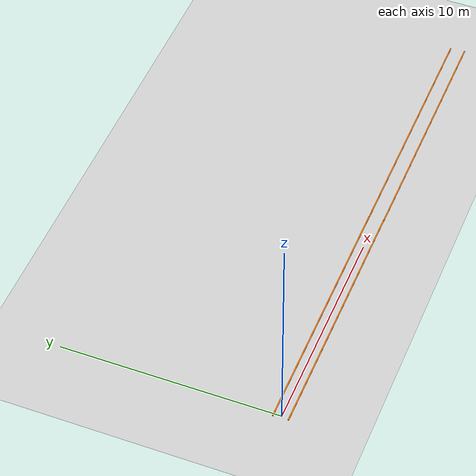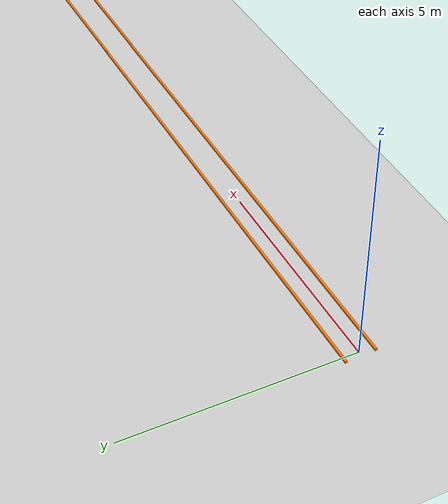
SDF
<sdf version="1.6">
 <world name="default">
  <model name="ground_plane">
   <static>1</static>
   <link name="link">
    <collision name="collision">
     <geometry><plane><normal>0 0 1</normal><size>100 100</size></plane></geometry>
     <surface><friction><ode><mu>100</mu><mu2>50</mu2></ode></friction></surface>
    </collision>
    <visual name="visual">
     <cast_shadows>0</cast_shadows>
     <geometry><plane><normal>0 0 1</normal><size>100 100</size></plane></geometry>
     <material>
      <script><uri>file://media/materials/scripts/gazebo.material</uri><name>Gazebo/Grey</name></script>
     </material>
    </visual>
   </link>
  </model>
  <light name="sun" type="directional">
   <pose>0 0 10 0 -0 0</pose>
   <diffuse>0.8 0.8 0.8 1</diffuse>
   <specular>0.2 0.2 0.2 1</specular>
   <attenuation>
    <range>1000</range>
    <constant>0.9</constant>
    <linear>0.01</linear>
    <quadratic>0.001</quadratic>
   </attenuation>
   <direction>-0.5 0.1 -0.9</direction>
  </light>
  <gravity>0 0 -9.8</gravity>
  <magnetic_field>6e-06 2.3e-05 -4.2e-05</magnetic_field>
  <atmosphere type="adiabatic"/>
  <physics name="default_physics" default="0" type="ode">
   <max_step_size>0.001</max_step_size>
   <real_time_factor>1</real_time_factor>
   <real_time_update_rate>1000</real_time_update_rate>
  </physics>
  <scene><ambient>0.4 0.4 0.4 1</ambient><background>0.7 0.7 0.7 1</background><shadows>1</shadows></scene>
  <spherical_coordinates>
   <surface_model>EARTH_WGS84</surface_model>
   <latitude_deg>0</latitude_deg>
   <longitude_deg>0</longitude_deg>
   <elevation>0</elevation>
   <heading_deg>0</heading_deg>
  </spherical_coordinates>
  <model name="lane">
   <pose>5.84643 -0.318739 0 0 -0 0</pose>
   <link name="Wall_0">
    <collision name="Wall_0_Collision">
     <geometry><box><size>11.9 0.05 0.05</size></box></geometry>
     <pose>0 0 0.025 0 -0 0</pose>
    </collision>
    <visual name="Wall_0_Visual">
     <pose>0 0 0.025 0 -0 0</pose>
     <geometry><box><size>11.9 0.05 0.05</size></box></geometry>
     <material>
      <script><uri>file://media/materials/scripts/gazebo.material</uri><name>Gazebo/Grey</name></script>
      <ambient>0.996078 0.47451 0.0196078 1</ambient>
     </material>
     <meta><layer>0</layer></meta>
    </visual>
   </link>
   <static>1</static>
  </model>
  <model name="lane_0">
   <pose>5.81441 0.356042 0 0 -0 0</pose>
   <link name="Wall_0">
    <collision name="Wall_0_Collision">
     <geometry><box><size>11.9 0.05 0.05</size></box></geometry>
     <pose>0 0 0.025 0 -0 0</pose>
    </collision>
    <visual name="Wall_0_Visual">
     <pose>0 0 0.025 0 -0 0</pose>
     <geometry><box><size>11.9 0.05 0.05</size></box></geometry>
     <material>
      <script><uri>file://media/materials/scripts/gazebo.material</uri><name>Gazebo/Grey</name></script>
      <ambient>0.996078 0.47451 0.0196078 1</ambient>
     </material>
     <meta><layer>0</layer></meta>
    </visual>
   </link>
   <static>1</static>
  </model>
  <model name="lane_1">
   <pose>17.7357 0.350281 0 0 -0 0</pose>
   <link name="Wall_0">
    <collision name="Wall_0_Collision">
     <geometry><box><size>11.9 0.05 0.05</size></box></geometry>
     <pose>0 0 0.025 0 -0 0</pose>
    </collision>
    <visual name="Wall_0_Visual">
     <pose>0 0 0.025 0 -0 0</pose>
     <geometry><box><size>11.9 0.05 0.05</size></box></geometry>
     <material>
      <script><uri>file://media/materials/scripts/gazebo.material</uri><name>Gazebo/Grey</name></script>
      <ambient>0.996078 0.47451 0.0196078 1</ambient>
     </material>
     <meta><layer>0</layer></meta>
    </visual>
   </link>
   <static>1</static>
  </model>
  <model name="lane_2">
   <pose>17.7713 -0.327684 0 0 -0 0</pose>
   <link name="Wall_0">
    <collision name="Wall_0_Collision">
     <geometry><box><size>11.9 0.05 0.05</size></box></geometry>
     <pose>0 0 0.025 0 -0 0</pose>
    </collision>
    <visual name="Wall_0_Visual">
     <pose>0 0 0.025 0 -0 0</pose>
     <geometry><box><size>11.9 0.05 0.05</size></box></geometry>
     <material>
      <script><uri>file://media/materials/scripts/gazebo.material</uri><name>Gazebo/Grey</name></script>
      <ambient>0.996078 0.47451 0.0196078 1</ambient>
     </material>
     <meta><layer>0</layer></meta>
    </visual>
   </link>
   <static>1</static>
  </model>
 </world>
</sdf>
